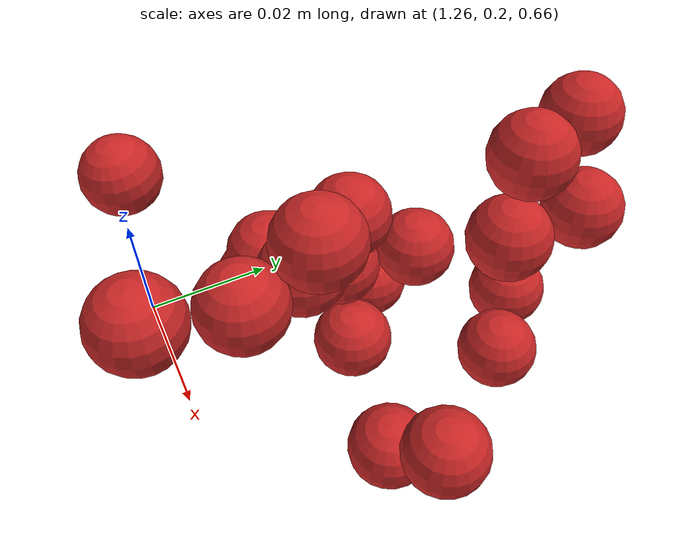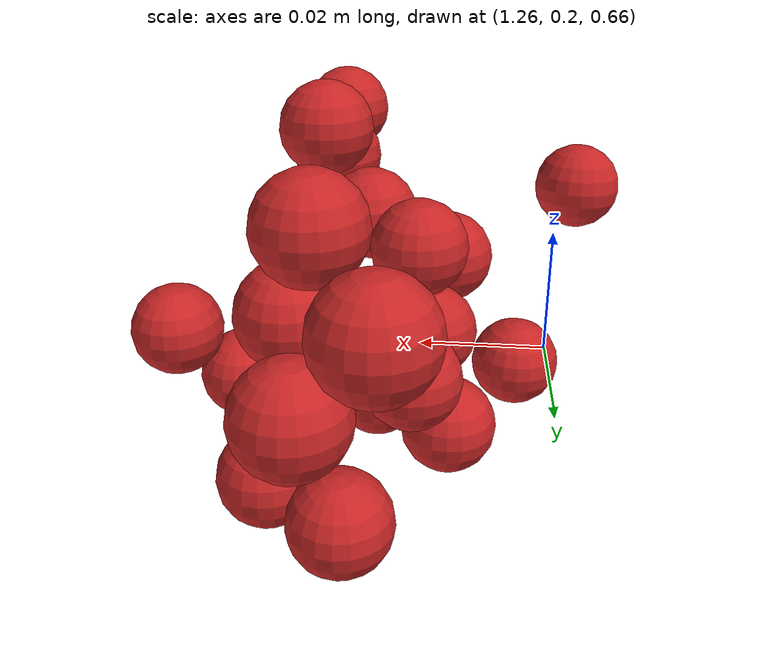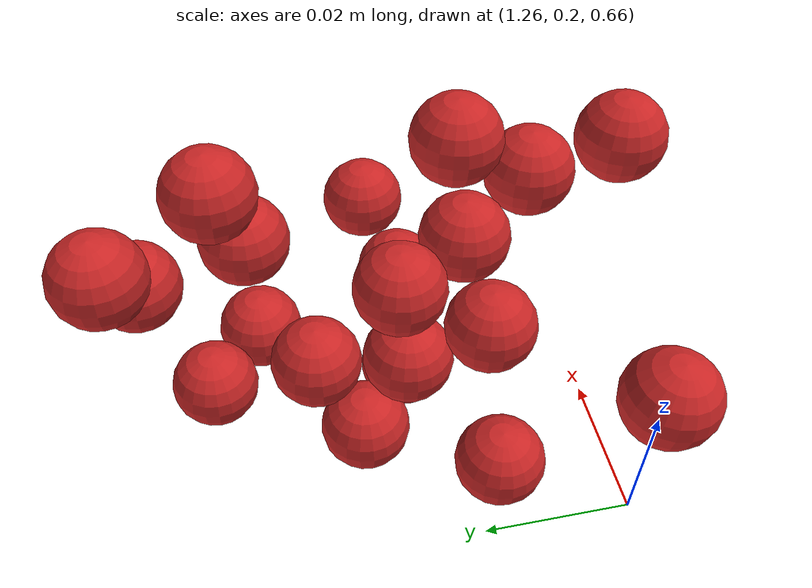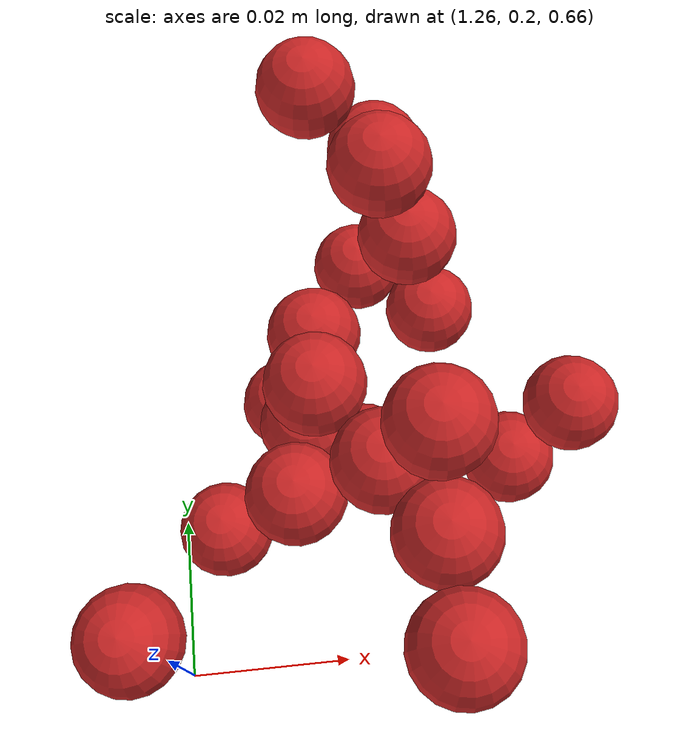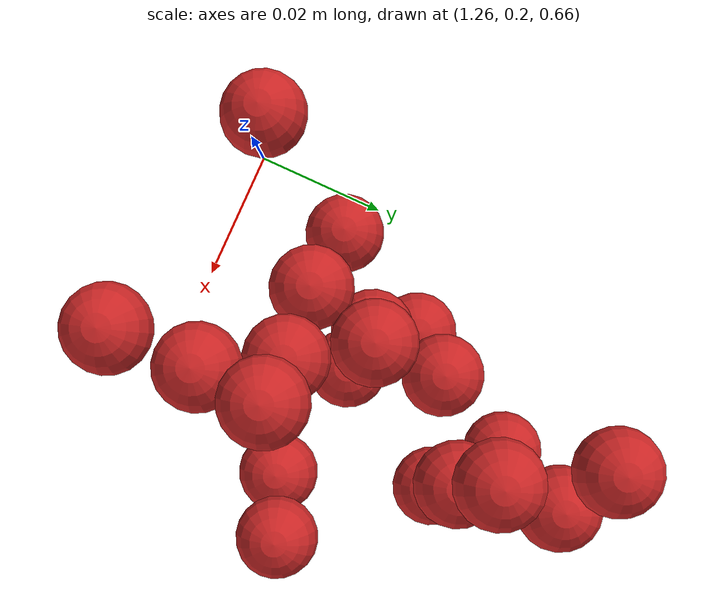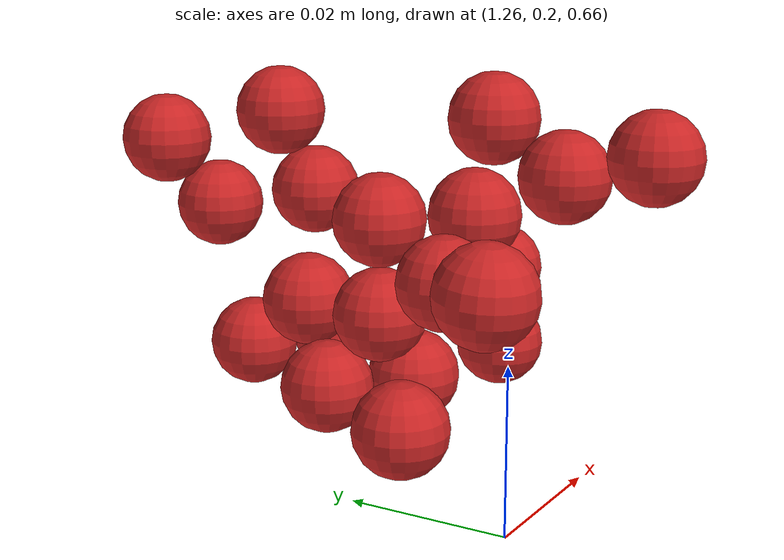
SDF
<sdf version="1.4">
 <world name="default">
  <model name="ground_plane">
   <static>1</static>
   <link name="link">
    <collision name="collision">
     <geometry><plane><normal>0 0 1</normal><size>100 100</size></plane></geometry>
     <surface><friction><ode><mu>100</mu><mu2>50</mu2></ode></friction></surface>
    </collision>
    <visual name="visual">
     <cast_shadows>0</cast_shadows>
     <geometry><plane><normal>0 0 1</normal><size>100 100</size></plane></geometry>
     <material>
      <script><uri>file://media/materials/scripts/gazebo.material</uri><name>Gazebo/Grey</name></script>
     </material>
    </visual>
    <velocity_decay><linear>0</linear><angular>0</angular></velocity_decay>
   </link>
  </model>
  <model name="sphere0">
   <pose>0.001008 0.018548 -0.081049 0.071962 -0.025475 0.002691</pose>
   <link name="link">
    <pose>1.27614 0.232149 0.722288 0 -0 0</pose>
    <inertial>
     <mass>0.001</mass>
     <inertia><ixx>0.004</ixx><ixy>0</ixy><ixz>0</ixz><iyy>0.004</iyy><iyz>0</iyz><izz>0.004</izz></inertia>
    </inertial>
    <collision name="collision">
     <surface>
      <contact><ode><kp>1e+10</kp><kd>1</kd></ode></contact>
      <friction><ode><mu>0.01</mu><mu2>0.01</mu2></ode></friction>
     </surface>
     <geometry><sphere><radius>0.006</radius></sphere></geometry>
    </collision>
    <visual name="visual">
     <geometry><sphere><radius>0.006</radius></sphere></geometry>
     <material>
      <script><uri>file://media/materials/scripts/gazebo.material</uri><name>Gazebo/Red</name></script>
     </material>
    </visual>
    <velocity_decay><linear>0</linear><angular>0</angular></velocity_decay>
   </link>
   <static>0</static>
  </model>
  <model name="sphere9">
   <pose>0.002803 -0.004202 -0.059302 0.001486 -0.001493 8.3e-05</pose>
   <link name="link">
    <pose>1.27614 0.232149 0.734288 0 -0 0</pose>
    <inertial>
     <mass>0.001</mass>
     <inertia><ixx>0.004</ixx><ixy>0</ixy><ixz>0</ixz><iyy>0.004</iyy><iyz>0</iyz><izz>0.004</izz></inertia>
    </inertial>
    <collision name="collision">
     <surface>
      <contact><ode><kp>1e+10</kp><kd>1</kd></ode></contact>
      <friction><ode><mu>0.01</mu><mu2>0.01</mu2></ode></friction>
     </surface>
     <geometry><sphere><radius>0.006</radius></sphere></geometry>
    </collision>
    <visual name="visual">
     <geometry><sphere><radius>0.006</radius></sphere></geometry>
     <material>
      <script><uri>file://media/materials/scripts/gazebo.material</uri><name>Gazebo/Red</name></script>
     </material>
    </visual>
    <velocity_decay><linear>0</linear><angular>0</angular></velocity_decay>
   </link>
   <static>0</static>
  </model>
  <model name="sphere13">
   <pose>0.00022 -0.017936 -0.07352 6e-05 -0.005185 -0.000187</pose>
   <link name="link">
    <pose>1.28814 0.244149 0.734288 0 -0 0</pose>
    <inertial>
     <mass>0.001</mass>
     <inertia><ixx>0.004</ixx><ixy>0</ixy><ixz>0</ixz><iyy>0.004</iyy><iyz>0</iyz><izz>0.004</izz></inertia>
    </inertial>
    <collision name="collision">
     <surface>
      <contact><ode><kp>1e+10</kp><kd>1</kd></ode></contact>
      <friction><ode><mu>0.01</mu><mu2>0.01</mu2></ode></friction>
     </surface>
     <geometry><sphere><radius>0.006</radius></sphere></geometry>
    </collision>
    <visual name="visual">
     <geometry><sphere><radius>0.006</radius></sphere></geometry>
     <material>
      <script><uri>file://media/materials/scripts/gazebo.material</uri><name>Gazebo/Red</name></script>
     </material>
    </visual>
    <velocity_decay><linear>0</linear><angular>0</angular></velocity_decay>
   </link>
   <static>0</static>
  </model>
  <model name="sphere18">
   <pose>-0.000387 -0.016964 -0.094649 -0.001726 -0.012766 0.000419</pose>
   <link name="link">
    <pose>1.27614 0.232149 0.746288 0 -0 0</pose>
    <inertial>
     <mass>0.001</mass>
     <inertia><ixx>0.004</ixx><ixy>0</ixy><ixz>0</ixz><iyy>0.004</iyy><iyz>0</iyz><izz>0.004</izz></inertia>
    </inertial>
    <collision name="collision">
     <surface>
      <contact><ode><kp>1e+10</kp><kd>1</kd></ode></contact>
      <friction><ode><mu>0.01</mu><mu2>0.01</mu2></ode></friction>
     </surface>
     <geometry><sphere><radius>0.006</radius></sphere></geometry>
    </collision>
    <visual name="visual">
     <geometry><sphere><radius>0.006</radius></sphere></geometry>
     <material>
      <script><uri>file://media/materials/scripts/gazebo.material</uri><name>Gazebo/Red</name></script>
     </material>
    </visual>
    <velocity_decay><linear>0</linear><angular>0</angular></velocity_decay>
   </link>
   <static>0</static>
  </model>
  <model name="sphere28">
   <pose>0.004063 -0.037692 -0.060857 -0.002287 -0.000801 8.6e-05</pose>
   <link name="link">
    <pose>1.28814 0.232149 0.758288 0 -0 0</pose>
    <inertial>
     <mass>0.001</mass>
     <inertia><ixx>0.004</ixx><ixy>0</ixy><ixz>0</ixz><iyy>0.004</iyy><iyz>0</iyz><izz>0.004</izz></inertia>
    </inertial>
    <collision name="collision">
     <surface>
      <contact><ode><kp>1e+10</kp><kd>1</kd></ode></contact>
      <friction><ode><mu>0.01</mu><mu2>0.01</mu2></ode></friction>
     </surface>
     <geometry><sphere><radius>0.006</radius></sphere></geometry>
    </collision>
    <visual name="visual">
     <geometry><sphere><radius>0.006</radius></sphere></geometry>
     <material>
      <script><uri>file://media/materials/scripts/gazebo.material</uri><name>Gazebo/Red</name></script>
     </material>
    </visual>
    <velocity_decay><linear>0</linear><angular>0</angular></velocity_decay>
   </link>
   <static>0</static>
  </model>
  <model name="sphere63">
   <pose>-9.5e-05 -0.018725 -0.122311 -0.001319 0.000386 0.001783</pose>
   <link name="link">
    <pose>1.27614 0.232149 0.806288 0 -0 0</pose>
    <inertial>
     <mass>0.001</mass>
     <inertia><ixx>0.004</ixx><ixy>0</ixy><ixz>0</ixz><iyy>0.004</iyy><iyz>0</iyz><izz>0.004</izz></inertia>
    </inertial>
    <collision name="collision">
     <surface>
      <contact><ode><kp>1e+10</kp><kd>1</kd></ode></contact>
      <friction><ode><mu>0.01</mu><mu2>0.01</mu2></ode></friction>
     </surface>
     <geometry><sphere><radius>0.006</radius></sphere></geometry>
    </collision>
    <visual name="visual">
     <geometry><sphere><radius>0.006</radius></sphere></geometry>
     <material>
      <script><uri>file://media/materials/scripts/gazebo.material</uri><name>Gazebo/Red</name></script>
     </material>
    </visual>
    <velocity_decay><linear>0</linear><angular>0</angular></velocity_decay>
   </link>
   <static>0</static>
  </model>
  <model name="sphere66">
   <pose>0.003818 -0.018053 -0.144314 -0.006395 -0.005489 0.00159</pose>
   <link name="link">
    <pose>1.27614 0.244149 0.806288 0 -0 0</pose>
    <inertial>
     <mass>0.001</mass>
     <inertia><ixx>0.004</ixx><ixy>0</ixy><ixz>0</ixz><iyy>0.004</iyy><iyz>0</iyz><izz>0.004</izz></inertia>
    </inertial>
    <collision name="collision">
     <surface>
      <contact><ode><kp>1e+10</kp><kd>1</kd></ode></contact>
      <friction><ode><mu>0.01</mu><mu2>0.01</mu2></ode></friction>
     </surface>
     <geometry><sphere><radius>0.006</radius></sphere></geometry>
    </collision>
    <visual name="visual">
     <geometry><sphere><radius>0.006</radius></sphere></geometry>
     <material>
      <script><uri>file://media/materials/scripts/gazebo.material</uri><name>Gazebo/Red</name></script>
     </material>
    </visual>
    <velocity_decay><linear>0</linear><angular>0</angular></velocity_decay>
   </link>
   <static>0</static>
  </model>
  <model name="sphere72">
   <pose>0.003478 -0.003798 -0.129914 0.000666 -0.000412 4e-05</pose>
   <link name="link">
    <pose>1.27614 0.232149 0.818288 0 -0 0</pose>
    <inertial>
     <mass>0.001</mass>
     <inertia><ixx>0.004</ixx><ixy>0</ixy><ixz>0</ixz><iyy>0.004</iyy><iyz>0</iyz><izz>0.004</izz></inertia>
    </inertial>
    <collision name="collision">
     <surface>
      <contact><ode><kp>1e+10</kp><kd>1</kd></ode></contact>
      <friction><ode><mu>0.01</mu><mu2>0.01</mu2></ode></friction>
     </surface>
     <geometry><sphere><radius>0.006</radius></sphere></geometry>
    </collision>
    <visual name="visual">
     <geometry><sphere><radius>0.006</radius></sphere></geometry>
     <material>
      <script><uri>file://media/materials/scripts/gazebo.material</uri><name>Gazebo/Red</name></script>
     </material>
    </visual>
    <velocity_decay><linear>0</linear><angular>0</angular></velocity_decay>
   </link>
   <static>0</static>
  </model>
  <model name="sphere75">
   <pose>0.005459 -0.005545 -0.144297 0.00022 -0.002464 0.000331</pose>
   <link name="link">
    <pose>1.27614 0.244149 0.818288 0 -0 0</pose>
    <inertial>
     <mass>0.001</mass>
     <inertia><ixx>0.004</ixx><ixy>0</ixy><ixz>0</ixz><iyy>0.004</iyy><iyz>0</iyz><izz>0.004</izz></inertia>
    </inertial>
    <collision name="collision">
     <surface>
      <contact><ode><kp>1e+10</kp><kd>1</kd></ode></contact>
      <friction><ode><mu>0.01</mu><mu2>0.01</mu2></ode></friction>
     </surface>
     <geometry><sphere><radius>0.006</radius></sphere></geometry>
    </collision>
    <visual name="visual">
     <geometry><sphere><radius>0.006</radius></sphere></geometry>
     <material>
      <script><uri>file://media/materials/scripts/gazebo.material</uri><name>Gazebo/Red</name></script>
     </material>
    </visual>
    <velocity_decay><linear>0</linear><angular>0</angular></velocity_decay>
   </link>
   <static>0</static>
  </model>
  <model name="sphere76">
   <pose>0.002757 -0.024164 -0.116702 0.001601 0.000797 -0.000321</pose>
   <link name="link">
    <pose>1.28814 0.244149 0.818288 0 -0 0</pose>
    <inertial>
     <mass>0.001</mass>
     <inertia><ixx>0.004</ixx><ixy>0</ixy><ixz>0</ixz><iyy>0.004</iyy><iyz>0</iyz><izz>0.004</izz></inertia>
    </inertial>
    <collision name="collision">
     <surface>
      <contact><ode><kp>1e+10</kp><kd>1</kd></ode></contact>
      <friction><ode><mu>0.01</mu><mu2>0.01</mu2></ode></friction>
     </surface>
     <geometry><sphere><radius>0.006</radius></sphere></geometry>
    </collision>
    <visual name="visual">
     <geometry><sphere><radius>0.006</radius></sphere></geometry>
     <material>
      <script><uri>file://media/materials/scripts/gazebo.material</uri><name>Gazebo/Red</name></script>
     </material>
    </visual>
    <velocity_decay><linear>0</linear><angular>0</angular></velocity_decay>
   </link>
   <static>0</static>
  </model>
  <model name="sphere79">
   <pose>-0.001507 0.012997 -0.156471 0.017325 -0.001008 -0.00184</pose>
   <link name="link">
    <pose>1.28814 0.256149 0.818288 0 -0 0</pose>
    <inertial>
     <mass>0.001</mass>
     <inertia><ixx>0.004</ixx><ixy>0</ixy><ixz>0</ixz><iyy>0.004</iyy><iyz>0</iyz><izz>0.004</izz></inertia>
    </inertial>
    <collision name="collision">
     <surface>
      <contact><ode><kp>1e+10</kp><kd>1</kd></ode></contact>
      <friction><ode><mu>0.01</mu><mu2>0.01</mu2></ode></friction>
     </surface>
     <geometry><sphere><radius>0.006</radius></sphere></geometry>
    </collision>
    <visual name="visual">
     <geometry><sphere><radius>0.006</radius></sphere></geometry>
     <material>
      <script><uri>file://media/materials/scripts/gazebo.material</uri><name>Gazebo/Red</name></script>
     </material>
    </visual>
    <velocity_decay><linear>0</linear><angular>0</angular></velocity_decay>
   </link>
   <static>0</static>
  </model>
  <model name="sphere80">
   <pose>-0.000455 -0.030337 -0.145965 0.003067 0.004345 -0.000324</pose>
   <link name="link">
    <pose>1.30014 0.256149 0.818288 0 -0 0</pose>
    <inertial>
     <mass>0.001</mass>
     <inertia><ixx>0.004</ixx><ixy>0</ixy><ixz>0</ixz><iyy>0.004</iyy><iyz>0</iyz><izz>0.004</izz></inertia>
    </inertial>
    <collision name="collision">
     <surface>
      <contact><ode><kp>1e+10</kp><kd>1</kd></ode></contact>
      <friction><ode><mu>0.01</mu><mu2>0.01</mu2></ode></friction>
     </surface>
     <geometry><sphere><radius>0.006</radius></sphere></geometry>
    </collision>
    <visual name="visual">
     <geometry><sphere><radius>0.006</radius></sphere></geometry>
     <material>
      <script><uri>file://media/materials/scripts/gazebo.material</uri><name>Gazebo/Red</name></script>
     </material>
    </visual>
    <velocity_decay><linear>0</linear><angular>0</angular></velocity_decay>
   </link>
   <static>0</static>
  </model>
  <model name="sphere82">
   <pose>-0.000653 -0.011217 -0.143808 0.002038 -0.002001 -0.00099</pose>
   <link name="link">
    <pose>1.28814 0.232149 0.830288 0 -0 0</pose>
    <inertial>
     <mass>0.001</mass>
     <inertia><ixx>0.004</ixx><ixy>0</ixy><ixz>0</ixz><iyy>0.004</iyy><iyz>0</iyz><izz>0.004</izz></inertia>
    </inertial>
    <collision name="collision">
     <surface>
      <contact><ode><kp>1e+10</kp><kd>1</kd></ode></contact>
      <friction><ode><mu>0.01</mu><mu2>0.01</mu2></ode></friction>
     </surface>
     <geometry><sphere><radius>0.006</radius></sphere></geometry>
    </collision>
    <visual name="visual">
     <geometry><sphere><radius>0.006</radius></sphere></geometry>
     <material>
      <script><uri>file://media/materials/scripts/gazebo.material</uri><name>Gazebo/Red</name></script>
     </material>
    </visual>
    <velocity_decay><linear>0</linear><angular>0</angular></velocity_decay>
   </link>
   <static>0</static>
  </model>
  <model name="sphere83">
   <pose>0.00191 -0.013028 -0.138227 -0.005448 0.011341 0.00238</pose>
   <link name="link">
    <pose>1.30014 0.232149 0.830288 0 -0 0</pose>
    <inertial>
     <mass>0.001</mass>
     <inertia><ixx>0.004</ixx><ixy>0</ixy><ixz>0</ixz><iyy>0.004</iyy><iyz>0</iyz><izz>0.004</izz></inertia>
    </inertial>
    <collision name="collision">
     <surface>
      <contact><ode><kp>1e+10</kp><kd>1</kd></ode></contact>
      <friction><ode><mu>0.01</mu><mu2>0.01</mu2></ode></friction>
     </surface>
     <geometry><sphere><radius>0.006</radius></sphere></geometry>
    </collision>
    <visual name="visual">
     <geometry><sphere><radius>0.006</radius></sphere></geometry>
     <material>
      <script><uri>file://media/materials/scripts/gazebo.material</uri><name>Gazebo/Red</name></script>
     </material>
    </visual>
    <velocity_decay><linear>0</linear><angular>0</angular></velocity_decay>
   </link>
   <static>0</static>
  </model>
  <model name="sphere94">
   <pose>-0.000512 0.00237 -0.139828 -0.001856 0.001686 0.000835</pose>
   <link name="link">
    <pose>1.28814 0.244149 0.842288 0 -0 0</pose>
    <inertial>
     <mass>0.001</mass>
     <inertia><ixx>0.004</ixx><ixy>0</ixy><ixz>0</ixz><iyy>0.004</iyy><iyz>0</iyz><izz>0.004</izz></inertia>
    </inertial>
    <collision name="collision">
     <surface>
      <contact><ode><kp>1e+10</kp><kd>1</kd></ode></contact>
      <friction><ode><mu>0.01</mu><mu2>0.01</mu2></ode></friction>
     </surface>
     <geometry><sphere><radius>0.006</radius></sphere></geometry>
    </collision>
    <visual name="visual">
     <geometry><sphere><radius>0.006</radius></sphere></geometry>
     <material>
      <script><uri>file://media/materials/scripts/gazebo.material</uri><name>Gazebo/Red</name></script>
     </material>
    </visual>
    <velocity_decay><linear>0</linear><angular>0</angular></velocity_decay>
   </link>
   <static>0</static>
  </model>
  <model name="sphere98">
   <pose>0.001845 -0.00421 -0.186789 0.007535 -0.007657 -0.000397</pose>
   <link name="link">
    <pose>1.30014 0.256149 0.842288 0 -0 0</pose>
    <inertial>
     <mass>0.001</mass>
     <inertia><ixx>0.004</ixx><ixy>0</ixy><ixz>0</ixz><iyy>0.004</iyy><iyz>0</iyz><izz>0.004</izz></inertia>
    </inertial>
    <collision name="collision">
     <surface>
      <contact><ode><kp>1e+10</kp><kd>1</kd></ode></contact>
      <friction><ode><mu>0.01</mu><mu2>0.01</mu2></ode></friction>
     </surface>
     <geometry><sphere><radius>0.006</radius></sphere></geometry>
    </collision>
    <visual name="visual">
     <geometry><sphere><radius>0.006</radius></sphere></geometry>
     <material>
      <script><uri>file://media/materials/scripts/gazebo.material</uri><name>Gazebo/Red</name></script>
     </material>
    </visual>
    <velocity_decay><linear>0</linear><angular>0</angular></velocity_decay>
   </link>
   <static>0</static>
  </model>
  <model name="sphere100">
   <pose>0.001585 -0.024423 -0.156932 0.001136 0.002526 0.001149</pose>
   <link name="link">
    <pose>1.28814 0.232149 0.854288 0 -0 0</pose>
    <inertial>
     <mass>0.001</mass>
     <inertia><ixx>0.004</ixx><ixy>0</ixy><ixz>0</ixz><iyy>0.004</iyy><iyz>0</iyz><izz>0.004</izz></inertia>
    </inertial>
    <collision name="collision">
     <surface>
      <contact><ode><kp>1e+10</kp><kd>1</kd></ode></contact>
      <friction><ode><mu>0.01</mu><mu2>0.01</mu2></ode></friction>
     </surface>
     <geometry><sphere><radius>0.006</radius></sphere></geometry>
    </collision>
    <visual name="visual">
     <geometry><sphere><radius>0.006</radius></sphere></geometry>
     <material>
      <script><uri>file://media/materials/scripts/gazebo.material</uri><name>Gazebo/Red</name></script>
     </material>
    </visual>
    <velocity_decay><linear>0</linear><angular>0</angular></velocity_decay>
   </link>
   <static>0</static>
  </model>
  <model name="sphere102">
   <pose>0.00531 0.022193 -0.159443 0.002721 -0.00032 -0.000904</pose>
   <link name="link">
    <pose>1.27614 0.244149 0.854288 0 -0 0</pose>
    <inertial>
     <mass>0.001</mass>
     <inertia><ixx>0.004</ixx><ixy>0</ixy><ixz>0</ixz><iyy>0.004</iyy><iyz>0</iyz><izz>0.004</izz></inertia>
    </inertial>
    <collision name="collision">
     <surface>
      <contact><ode><kp>1e+10</kp><kd>1</kd></ode></contact>
      <friction><ode><mu>0.01</mu><mu2>0.01</mu2></ode></friction>
     </surface>
     <geometry><sphere><radius>0.006</radius></sphere></geometry>
    </collision>
    <visual name="visual">
     <geometry><sphere><radius>0.006</radius></sphere></geometry>
     <material>
      <script><uri>file://media/materials/scripts/gazebo.material</uri><name>Gazebo/Red</name></script>
     </material>
    </visual>
    <velocity_decay><linear>0</linear><angular>0</angular></velocity_decay>
   </link>
   <static>0</static>
  </model>
  <model name="sphere103">
   <pose>0.000335 0.001457 -0.16031 -0.004304 0.003238 -0.002734</pose>
   <link name="link">
    <pose>1.28814 0.244149 0.854288 0 -0 0</pose>
    <inertial>
     <mass>0.001</mass>
     <inertia><ixx>0.004</ixx><ixy>0</ixy><ixz>0</ixz><iyy>0.004</iyy><iyz>0</iyz><izz>0.004</izz></inertia>
    </inertial>
    <collision name="collision">
     <surface>
      <contact><ode><kp>1e+10</kp><kd>1</kd></ode></contact>
      <friction><ode><mu>0.01</mu><mu2>0.01</mu2></ode></friction>
     </surface>
     <geometry><sphere><radius>0.006</radius></sphere></geometry>
    </collision>
    <visual name="visual">
     <geometry><sphere><radius>0.006</radius></sphere></geometry>
     <material>
      <script><uri>file://media/materials/scripts/gazebo.material</uri><name>Gazebo/Red</name></script>
     </material>
    </visual>
    <velocity_decay><linear>0</linear><angular>0</angular></velocity_decay>
   </link>
   <static>0</static>
  </model>
  <model name="sphere115">
   <pose>0.00543 0.020274 -0.191369 0.007275 -0.006965 -0.007762</pose>
   <link name="link">
    <pose>1.28814 0.256149 0.866288 0 -0 0</pose>
    <inertial>
     <mass>0.001</mass>
     <inertia><ixx>0.004</ixx><ixy>0</ixy><ixz>0</ixz><iyy>0.004</iyy><iyz>0</iyz><izz>0.004</izz></inertia>
    </inertial>
    <collision name="collision">
     <surface>
      <contact><ode><kp>1e+10</kp><kd>1</kd></ode></contact>
      <friction><ode><mu>0.01</mu><mu2>0.01</mu2></ode></friction>
     </surface>
     <geometry><sphere><radius>0.006</radius></sphere></geometry>
    </collision>
    <visual name="visual">
     <geometry><sphere><radius>0.006</radius></sphere></geometry>
     <material>
      <script><uri>file://media/materials/scripts/gazebo.material</uri><name>Gazebo/Red</name></script>
     </material>
    </visual>
    <velocity_decay><linear>0</linear><angular>0</angular></velocity_decay>
   </link>
   <static>0</static>
  </model>
 </world>
</sdf>
